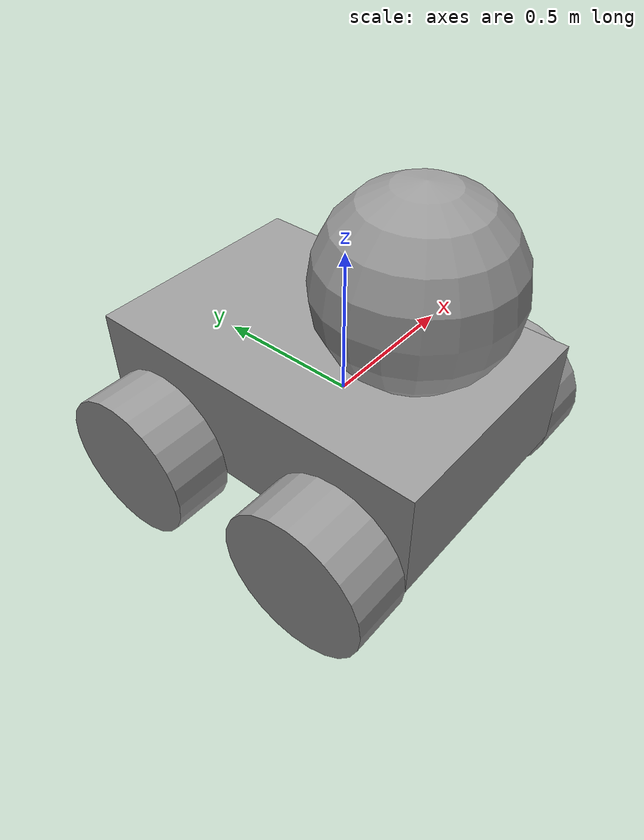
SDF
<?xml version='1.0'?>
<sdf version='1.6'>
  <model name='model'>
    <link name='link_2'>
      <inertial>
        <mass>1</mass>
        <inertia>
          <ixx>0.166667</ixx>
          <ixy>0</ixy>
          <ixz>0</ixz>
          <iyy>0.166667</iyy>
          <iyz>0</iyz>
          <izz>0.166667</izz>
        </inertia>
        <pose frame=''>0 0 0 0 -0 0</pose>
      </inertial>
      <pose frame=''>-0 0.05 0.011667 0 -0 0</pose>
      <gravity>1</gravity>
      <self_collide>0</self_collide>
      <kinematic>0</kinematic>
      <enable_wind>0</enable_wind>
      <visual name='visual'>
        <pose frame=''>0 0 0 0 -0 0</pose>
        <geometry>
          <box>
            <size>0.8 1.2 0.38</size>
          </box>
        </geometry>
        <material>
          <lighting>1</lighting>
          <script>
            <uri>file://media/materials/scripts/gazebo.material</uri>
            <name>Gazebo/Grey</name>
          </script>
          <shader type='pixel'>
            <normal_map>__default__</normal_map>
          </shader>
          <ambient>0.3 0.3 0.3 1</ambient>
          <diffuse>0.7 0.7 0.7 1</diffuse>
          <specular>0.01 0.01 0.01 1</specular>
          <emissive>0 0 0 1</emissive>
        </material>
        <transparency>0</transparency>
        <cast_shadows>1</cast_shadows>
      </visual>
      <collision name='collision'>
        <laser_retro>0</laser_retro>
        <max_contacts>10</max_contacts>
        <pose frame=''>0 0 0 0 -0 0</pose>
        <geometry>
          <box>
            <size>0.8 1.2 0.38</size>
          </box>
        </geometry>
        <surface>
          <friction>
            <ode>
              <mu>1</mu>
              <mu2>1</mu2>
              <fdir1>0 0 0</fdir1>
              <slip1>0</slip1>
              <slip2>0</slip2>
            </ode>
            <torsional>
              <coefficient>1</coefficient>
              <patch_radius>0</patch_radius>
              <surface_radius>0</surface_radius>
              <use_patch_radius>1</use_patch_radius>
              <ode>
                <slip>0</slip>
              </ode>
            </torsional>
          </friction>
          <bounce>
            <restitution_coefficient>0</restitution_coefficient>
            <threshold>1e+06</threshold>
          </bounce>
          <contact>
            <collide_without_contact>0</collide_without_contact>
            <collide_without_contact_bitmask>1</collide_without_contact_bitmask>
            <collide_bitmask>1</collide_bitmask>
            <ode>
              <soft_cfm>0</soft_cfm>
              <soft_erp>0.2</soft_erp>
              <kp>1e+13</kp>
              <kd>1</kd>
              <max_vel>0.01</max_vel>
              <min_depth>0</min_depth>
            </ode>
            <bullet>
              <split_impulse>1</split_impulse>
              <split_impulse_penetration_threshold>-0.01</split_impulse_penetration_threshold>
              <soft_cfm>0</soft_cfm>
              <soft_erp>0.2</soft_erp>
              <kp>1e+13</kp>
              <kd>1</kd>
            </bullet>
          </contact>
        </surface>
      </collision>
    </link>
    <link name='link_3'>
      <inertial>
        <mass>1</mass>
        <inertia>
          <ixx>0.145833</ixx>
          <ixy>0</ixy>
          <ixz>0</ixz>
          <iyy>0.145833</iyy>
          <iyz>0</iyz>
          <izz>0.125</izz>
        </inertia>
        <pose frame=''>0 0 0 0 -0 0</pose>
      </inertial>
      <pose frame=''>0.500048 -0.299987 -0.168333 1.5707 0 1.5707</pose>
      <gravity>1</gravity>
      <self_collide>0</self_collide>
      <kinematic>0</kinematic>
      <enable_wind>0</enable_wind>
      <visual name='visual'>
        <pose frame=''>0 0 0 0 -0 0</pose>
        <geometry>
          <cylinder>
            <radius>0.25</radius>
            <length>0.2</length>
          </cylinder>
        </geometry>
        <material>
          <lighting>1</lighting>
          <script>
            <uri>file://media/materials/scripts/gazebo.material</uri>
            <name>Gazebo/Grey</name>
          </script>
          <shader type='pixel'>
            <normal_map>__default__</normal_map>
          </shader>
          <ambient>0.3 0.3 0.3 1</ambient>
          <diffuse>0.7 0.7 0.7 1</diffuse>
          <specular>0.01 0.01 0.01 1</specular>
          <emissive>0 0 0 1</emissive>
        </material>
        <transparency>0</transparency>
        <cast_shadows>1</cast_shadows>
      </visual>
      <collision name='collision'>
        <laser_retro>0</laser_retro>
        <max_contacts>10</max_contacts>
        <pose frame=''>0 0 0 0 -0 0</pose>
        <geometry>
          <cylinder>
            <radius>0.25</radius>
            <length>0.2</length>
          </cylinder>
        </geometry>
        <surface>
          <friction>
            <ode>
              <mu>1</mu>
              <mu2>1</mu2>
              <fdir1>0 0 0</fdir1>
              <slip1>0</slip1>
              <slip2>0</slip2>
            </ode>
            <torsional>
              <coefficient>1</coefficient>
              <patch_radius>0</patch_radius>
              <surface_radius>0</surface_radius>
              <use_patch_radius>1</use_patch_radius>
              <ode>
                <slip>0</slip>
              </ode>
            </torsional>
          </friction>
          <bounce>
            <restitution_coefficient>0</restitution_coefficient>
            <threshold>1e+06</threshold>
          </bounce>
          <contact>
            <collide_without_contact>0</collide_without_contact>
            <collide_without_contact_bitmask>1</collide_without_contact_bitmask>
            <collide_bitmask>1</collide_bitmask>
            <ode>
              <soft_cfm>0</soft_cfm>
              <soft_erp>0.2</soft_erp>
              <kp>1e+13</kp>
              <kd>1</kd>
              <max_vel>0.01</max_vel>
              <min_depth>0</min_depth>
            </ode>
            <bullet>
              <split_impulse>1</split_impulse>
              <split_impulse_penetration_threshold>-0.01</split_impulse_penetration_threshold>
              <soft_cfm>0</soft_cfm>
              <soft_erp>0.2</soft_erp>
              <kp>1e+13</kp>
              <kd>1</kd>
            </bullet>
          </contact>
        </surface>
      </collision>
    </link>
    <link name='link_3_clone'>
      <inertial>
        <mass>1</mass>
        <inertia>
          <ixx>0.145833</ixx>
          <ixy>0</ixy>
          <ixz>0</ixz>
          <iyy>0.145833</iyy>
          <iyz>0</iyz>
          <izz>0.125</izz>
        </inertia>
        <pose frame=''>0 0 0 0 -0 0</pose>
      </inertial>
      <pose frame=''>0.500048 0.39999 -0.188333 1.5707 0 1.5707</pose>
      <gravity>1</gravity>
      <self_collide>0</self_collide>
      <kinematic>0</kinematic>
      <enable_wind>0</enable_wind>
      <visual name='visual'>
        <pose frame=''>0 0 0 0 -0 0</pose>
        <geometry>
          <cylinder>
            <radius>0.25</radius>
            <length>0.2</length>
          </cylinder>
        </geometry>
        <material>
          <lighting>1</lighting>
          <script>
            <uri>file://media/materials/scripts/gazebo.material</uri>
            <name>Gazebo/Grey</name>
          </script>
          <shader type='pixel'>
            <normal_map>__default__</normal_map>
          </shader>
          <ambient>0.3 0.3 0.3 1</ambient>
          <diffuse>0.7 0.7 0.7 1</diffuse>
          <specular>0.01 0.01 0.01 1</specular>
          <emissive>0 0 0 1</emissive>
        </material>
        <transparency>0</transparency>
        <cast_shadows>1</cast_shadows>
      </visual>
      <collision name='collision'>
        <laser_retro>0</laser_retro>
        <max_contacts>10</max_contacts>
        <pose frame=''>0 0 0 0 -0 0</pose>
        <geometry>
          <cylinder>
            <radius>0.25</radius>
            <length>0.2</length>
          </cylinder>
        </geometry>
        <surface>
          <friction>
            <ode>
              <mu>1</mu>
              <mu2>1</mu2>
              <fdir1>0 0 0</fdir1>
              <slip1>0</slip1>
              <slip2>0</slip2>
            </ode>
            <torsional>
              <coefficient>1</coefficient>
              <patch_radius>0</patch_radius>
              <surface_radius>0</surface_radius>
              <use_patch_radius>1</use_patch_radius>
              <ode>
                <slip>0</slip>
              </ode>
            </torsional>
          </friction>
          <bounce>
            <restitution_coefficient>0</restitution_coefficient>
            <threshold>1e+06</threshold>
          </bounce>
          <contact>
            <collide_without_contact>0</collide_without_contact>
            <collide_without_contact_bitmask>1</collide_without_contact_bitmask>
            <collide_bitmask>1</collide_bitmask>
            <ode>
              <soft_cfm>0</soft_cfm>
              <soft_erp>0.2</soft_erp>
              <kp>1e+13</kp>
              <kd>1</kd>
              <max_vel>0.01</max_vel>
              <min_depth>0</min_depth>
            </ode>
            <bullet>
              <split_impulse>1</split_impulse>
              <split_impulse_penetration_threshold>-0.01</split_impulse_penetration_threshold>
              <soft_cfm>0</soft_cfm>
              <soft_erp>0.2</soft_erp>
              <kp>1e+13</kp>
              <kd>1</kd>
            </bullet>
          </contact>
        </surface>
      </collision>
    </link>
    <link name='link_3_clone_0'>
      <inertial>
        <mass>1</mass>
        <inertia>
          <ixx>0.145833</ixx>
          <ixy>0</ixy>
          <ixz>0</ixz>
          <iyy>0.145833</iyy>
          <iyz>0</iyz>
          <izz>0.125</izz>
        </inertia>
        <pose frame=''>0 0 0 0 -0 0</pose>
      </inertial>
      <pose frame=''>-0.500048 -0.29999 -0.168333 1.5707 0 1.5707</pose>
      <gravity>1</gravity>
      <self_collide>0</self_collide>
      <kinematic>0</kinematic>
      <enable_wind>0</enable_wind>
      <visual name='visual'>
        <pose frame=''>0 0 0 0 -0 0</pose>
        <geometry>
          <cylinder>
            <radius>0.25</radius>
            <length>0.2</length>
          </cylinder>
        </geometry>
        <material>
          <lighting>1</lighting>
          <script>
            <uri>file://media/materials/scripts/gazebo.material</uri>
            <name>Gazebo/Grey</name>
          </script>
          <shader type='pixel'>
            <normal_map>__default__</normal_map>
          </shader>
          <ambient>0.3 0.3 0.3 1</ambient>
          <diffuse>0.7 0.7 0.7 1</diffuse>
          <specular>0.01 0.01 0.01 1</specular>
          <emissive>0 0 0 1</emissive>
        </material>
        <transparency>0</transparency>
        <cast_shadows>1</cast_shadows>
      </visual>
      <collision name='collision'>
        <laser_retro>0</laser_retro>
        <max_contacts>10</max_contacts>
        <pose frame=''>0 0 0 0 -0 0</pose>
        <geometry>
          <cylinder>
            <radius>0.25</radius>
            <length>0.2</length>
          </cylinder>
        </geometry>
        <surface>
          <friction>
            <ode>
              <mu>1</mu>
              <mu2>1</mu2>
              <fdir1>0 0 0</fdir1>
              <slip1>0</slip1>
              <slip2>0</slip2>
            </ode>
            <torsional>
              <coefficient>1</coefficient>
              <patch_radius>0</patch_radius>
              <surface_radius>0</surface_radius>
              <use_patch_radius>1</use_patch_radius>
              <ode>
                <slip>0</slip>
              </ode>
            </torsional>
          </friction>
          <bounce>
            <restitution_coefficient>0</restitution_coefficient>
            <threshold>1e+06</threshold>
          </bounce>
          <contact>
            <collide_without_contact>0</collide_without_contact>
            <collide_without_contact_bitmask>1</collide_without_contact_bitmask>
            <collide_bitmask>1</collide_bitmask>
            <ode>
              <soft_cfm>0</soft_cfm>
              <soft_erp>0.2</soft_erp>
              <kp>1e+13</kp>
              <kd>1</kd>
              <max_vel>0.01</max_vel>
              <min_depth>0</min_depth>
            </ode>
            <bullet>
              <split_impulse>1</split_impulse>
              <split_impulse_penetration_threshold>-0.01</split_impulse_penetration_threshold>
              <soft_cfm>0</soft_cfm>
              <soft_erp>0.2</soft_erp>
              <kp>1e+13</kp>
              <kd>1</kd>
            </bullet>
          </contact>
        </surface>
      </collision>
    </link>
    <link name='link_3_clone_1'>
      <inertial>
        <mass>1</mass>
        <inertia>
          <ixx>0.145833</ixx>
          <ixy>0</ixy>
          <ixz>0</ixz>
          <iyy>0.145833</iyy>
          <iyz>0</iyz>
          <izz>0.125</izz>
        </inertia>
        <pose frame=''>0 0 0 0 -0 0</pose>
      </inertial>
      <pose frame=''>-0.500049 0.39999 -0.168333 1.5707 0 1.5707</pose>
      <gravity>1</gravity>
      <self_collide>0</self_collide>
      <kinematic>0</kinematic>
      <enable_wind>0</enable_wind>
      <visual name='visual'>
        <pose frame=''>0 0 0 0 -0 0</pose>
        <geometry>
          <cylinder>
            <radius>0.25</radius>
            <length>0.2</length>
          </cylinder>
        </geometry>
        <material>
          <lighting>1</lighting>
          <script>
            <uri>file://media/materials/scripts/gazebo.material</uri>
            <name>Gazebo/Grey</name>
          </script>
          <shader type='pixel'>
            <normal_map>__default__</normal_map>
          </shader>
          <ambient>0.3 0.3 0.3 1</ambient>
          <diffuse>0.7 0.7 0.7 1</diffuse>
          <specular>0.01 0.01 0.01 1</specular>
          <emissive>0 0 0 1</emissive>
        </material>
        <transparency>0</transparency>
        <cast_shadows>1</cast_shadows>
      </visual>
      <collision name='collision'>
        <laser_retro>0</laser_retro>
        <max_contacts>10</max_contacts>
        <pose frame=''>0 0 0 0 -0 0</pose>
        <geometry>
          <cylinder>
            <radius>0.25</radius>
            <length>0.2</length>
          </cylinder>
        </geometry>
        <surface>
          <friction>
            <ode>
              <mu>1</mu>
              <mu2>1</mu2>
              <fdir1>0 0 0</fdir1>
              <slip1>0</slip1>
              <slip2>0</slip2>
            </ode>
            <torsional>
              <coefficient>1</coefficient>
              <patch_radius>0</patch_radius>
              <surface_radius>0</surface_radius>
              <use_patch_radius>1</use_patch_radius>
              <ode>
                <slip>0</slip>
              </ode>
            </torsional>
          </friction>
          <bounce>
            <restitution_coefficient>0</restitution_coefficient>
            <threshold>1e+06</threshold>
          </bounce>
          <contact>
            <collide_without_contact>0</collide_without_contact>
            <collide_without_contact_bitmask>1</collide_without_contact_bitmask>
            <collide_bitmask>1</collide_bitmask>
            <ode>
              <soft_cfm>0</soft_cfm>
              <soft_erp>0.2</soft_erp>
              <kp>1e+13</kp>
              <kd>1</kd>
              <max_vel>0.01</max_vel>
              <min_depth>0</min_depth>
            </ode>
            <bullet>
              <split_impulse>1</split_impulse>
              <split_impulse_penetration_threshold>-0.01</split_impulse_penetration_threshold>
              <soft_cfm>0</soft_cfm>
              <soft_erp>0.2</soft_erp>
              <kp>1e+13</kp>
              <kd>1</kd>
            </bullet>
          </contact>
        </surface>
      </collision>
    </link>
    <link name='link_5'>
      <inertial>
        <mass>1</mass>
        <inertia>
          <ixx>0.1</ixx>
          <ixy>0</ixy>
          <ixz>0</ixz>
          <iyy>0.1</iyy>
          <iyz>0</iyz>
          <izz>0.1</izz>
        </inertia>
        <pose frame=''>0 0 0 0 -0 0</pose>
      </inertial>
      <pose frame=''>-0 -0.25 0.501667 0 -0 0</pose>
      <gravity>1</gravity>
      <self_collide>0</self_collide>
      <kinematic>0</kinematic>
      <enable_wind>0</enable_wind>
      <visual name='visual'>
        <pose frame=''>0 0 0 0 -0 0</pose>
        <geometry>
          <sphere>
            <radius>0.3</radius>
          </sphere>
        </geometry>
        <material>
          <lighting>1</lighting>
          <script>
            <uri>file://media/materials/scripts/gazebo.material</uri>
            <name>Gazebo/Grey</name>
          </script>
          <shader type='pixel'>
            <normal_map>__default__</normal_map>
          </shader>
          <ambient>0.3 0.3 0.3 1</ambient>
          <diffuse>0.7 0.7 0.7 1</diffuse>
          <specular>0.01 0.01 0.01 1</specular>
          <emissive>0 0 0 1</emissive>
        </material>
        <transparency>0</transparency>
        <cast_shadows>1</cast_shadows>
      </visual>
      <collision name='collision'>
        <laser_retro>0</laser_retro>
        <max_contacts>10</max_contacts>
        <pose frame=''>0 0 0 0 -0 0</pose>
        <geometry>
          <sphere>
            <radius>0.3</radius>
          </sphere>
        </geometry>
        <surface>
          <friction>
            <ode>
              <mu>1</mu>
              <mu2>1</mu2>
              <fdir1>0 0 0</fdir1>
              <slip1>0</slip1>
              <slip2>0</slip2>
            </ode>
            <torsional>
              <coefficient>1</coefficient>
              <patch_radius>0</patch_radius>
              <surface_radius>0</surface_radius>
              <use_patch_radius>1</use_patch_radius>
              <ode>
                <slip>0</slip>
              </ode>
            </torsional>
          </friction>
          <bounce>
            <restitution_coefficient>0</restitution_coefficient>
            <threshold>1e+06</threshold>
          </bounce>
          <contact>
            <collide_without_contact>0</collide_without_contact>
            <collide_without_contact_bitmask>1</collide_without_contact_bitmask>
            <collide_bitmask>1</collide_bitmask>
            <ode>
              <soft_cfm>0</soft_cfm>
              <soft_erp>0.2</soft_erp>
              <kp>1e+13</kp>
              <kd>1</kd>
              <max_vel>0.01</max_vel>
              <min_depth>0</min_depth>
            </ode>
            <bullet>
              <split_impulse>1</split_impulse>
              <split_impulse_penetration_threshold>-0.01</split_impulse_penetration_threshold>
              <soft_cfm>0</soft_cfm>
              <soft_erp>0.2</soft_erp>
              <kp>1e+13</kp>
              <kd>1</kd>
            </bullet>
          </contact>
        </surface>
      </collision>
    </link>
    <joint name='link_2_JOINT_0' type='revolute'>
      <parent>link_2</parent>
      <child>link_3</child>
      <pose frame=''>0 0 0 0.11 -0 0</pose>
      <axis>
        <xyz>1 0 0</xyz>
        <use_parent_model_frame>0</use_parent_model_frame>
        <limit>
          <lower>-1.79769e+308</lower>
          <upper>1.79769e+308</upper>
          <effort>-1</effort>
          <velocity>-1</velocity>
        </limit>
        <dynamics>
          <spring_reference>0</spring_reference>
          <spring_stiffness>0</spring_stiffness>
          <damping>0</damping>
        </dynamics>
      </axis>
      <physics>
        <ode>
          <limit>
            <cfm>0</cfm>
            <erp>0.2</erp>
          </limit>
          <suspension>
            <cfm>0</cfm>
            <erp>0.2</erp>
          </suspension>
        </ode>
      </physics>
    </joint>
    <joint name='link_2_JOINT_1' type='revolute'>
      <parent>link_2</parent>
      <child>link_3_clone</child>
      <pose frame=''>0 0 0 0 -0 0</pose>
      <axis>
        <xyz>1 0 0</xyz>
        <use_parent_model_frame>0</use_parent_model_frame>
        <limit>
          <lower>-1.79769e+308</lower>
          <upper>1.79769e+308</upper>
          <effort>-1</effort>
          <velocity>-1</velocity>
        </limit>
        <dynamics>
          <spring_reference>0</spring_reference>
          <spring_stiffness>0</spring_stiffness>
          <damping>0</damping>
        </dynamics>
      </axis>
      <physics>
        <ode>
          <limit>
            <cfm>0</cfm>
            <erp>0.2</erp>
          </limit>
          <suspension>
            <cfm>0</cfm>
            <erp>0.2</erp>
          </suspension>
        </ode>
      </physics>
    </joint>
    <joint name='link_2_JOINT_2' type='revolute'>
      <parent>link_2</parent>
      <child>link_3_clone_1</child>
      <pose frame=''>0 0 0 0 -0 0</pose>
      <axis>
        <xyz>1 0 0</xyz>
        <use_parent_model_frame>0</use_parent_model_frame>
        <limit>
          <lower>-1.79769e+308</lower>
          <upper>1.79769e+308</upper>
          <effort>-1</effort>
          <velocity>-1</velocity>
        </limit>
        <dynamics>
          <spring_reference>0</spring_reference>
          <spring_stiffness>0</spring_stiffness>
          <damping>0</damping>
        </dynamics>
      </axis>
      <physics>
        <ode>
          <limit>
            <cfm>0</cfm>
            <erp>0.2</erp>
          </limit>
          <suspension>
            <cfm>0</cfm>
            <erp>0.2</erp>
          </suspension>
        </ode>
      </physics>
    </joint>
    <joint name='link_2_JOINT_3' type='revolute'>
      <parent>link_2</parent>
      <child>link_3_clone_0</child>
      <pose frame=''>0 0 0 0 -0 0</pose>
      <axis>
        <xyz>1 0 0</xyz>
        <use_parent_model_frame>0</use_parent_model_frame>
        <limit>
          <lower>-1.79769e+308</lower>
          <upper>1.79769e+308</upper>
          <effort>-1</effort>
          <velocity>-1</velocity>
        </limit>
        <dynamics>
          <spring_reference>0</spring_reference>
          <spring_stiffness>0</spring_stiffness>
          <damping>0</damping>
        </dynamics>
      </axis>
      <physics>
        <ode>
          <limit>
            <cfm>0</cfm>
            <erp>0.2</erp>
          </limit>
          <suspension>
            <cfm>0</cfm>
            <erp>0.2</erp>
          </suspension>
        </ode>
      </physics>
    </joint>
    <joint name='link_2_JOINT_4' type='revolute'>
      <parent>link_2</parent>
      <child>link_5</child>
      <pose frame=''>0 0 0 0 -0 0</pose>
      <axis>
        <xyz>1 0 0</xyz>
        <use_parent_model_frame>0</use_parent_model_frame>
        <limit>
          <lower>-1.79769e+308</lower>
          <upper>1.79769e+308</upper>
          <effort>-1</effort>
          <velocity>-1</velocity>
        </limit>
        <dynamics>
          <spring_reference>0</spring_reference>
          <spring_stiffness>0</spring_stiffness>
          <damping>0</damping>
        </dynamics>
      </axis>
      <physics>
        <ode>
          <limit>
            <cfm>0</cfm>
            <erp>0.2</erp>
          </limit>
          <suspension>
            <cfm>0</cfm>
            <erp>0.2</erp>
          </suspension>
        </ode>
      </physics>
    </joint>
    <static>0</static>
    <allow_auto_disable>1</allow_auto_disable>
  </model>
</sdf>
